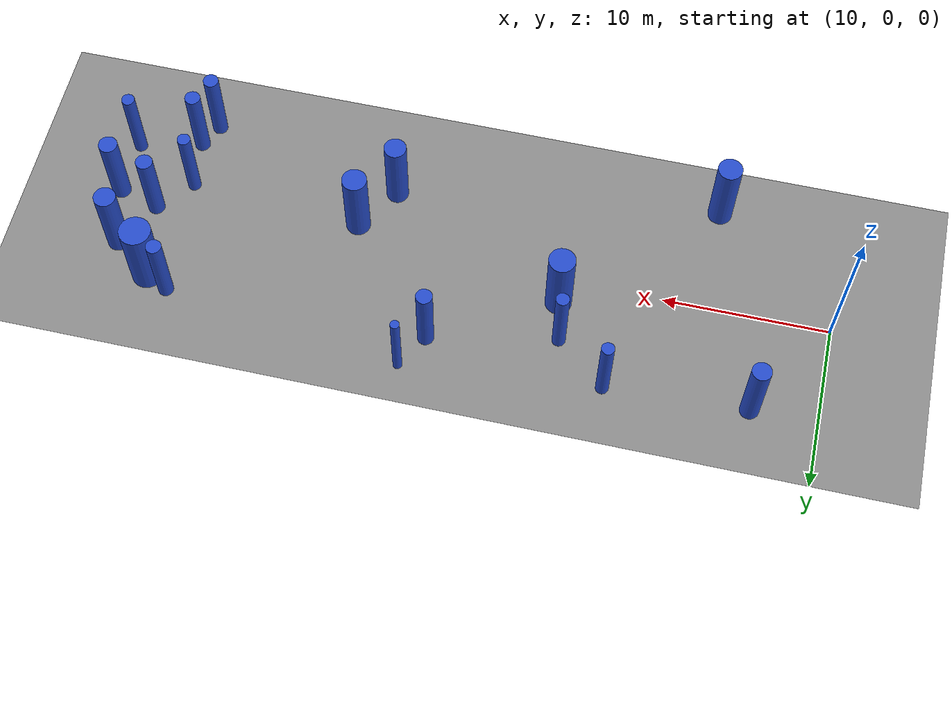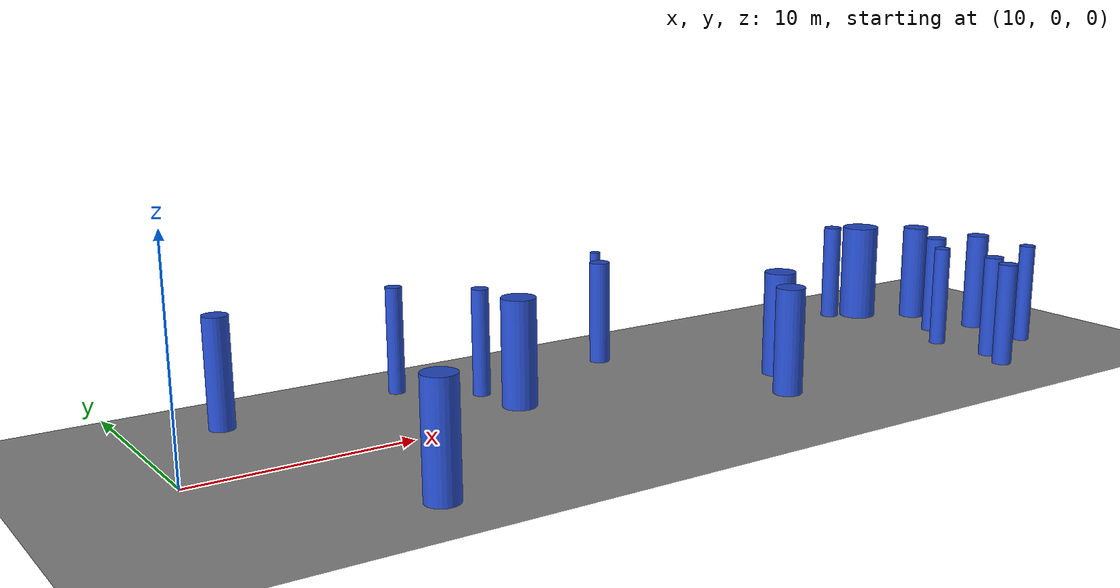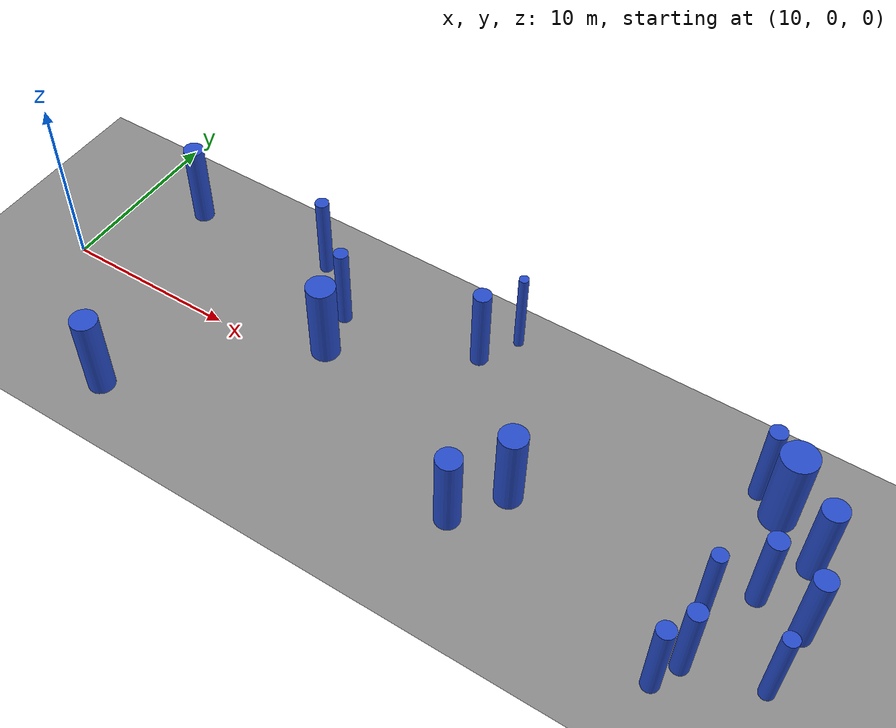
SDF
<sdf version="1.7">
 <world name="forest_randomization_v1">
  <gravity>0 0 -9.8</gravity>
  <light name="sun" type="directional">
   <pose>30 0 20 0 -0 0</pose>
   <diffuse>0.8 0.8 0.8 1</diffuse>
   <specular>0.2 0.2 0.2 1</specular>
   <direction>-0.5 0.5 -1</direction>
   <attenuation><range>10</range></attenuation>
   <spot><inner_angle>0</inner_angle><outer_angle>0</outer_angle><falloff>0</falloff></spot>
  </light>
  <model name="forest_ground_60x20">
   <static>1</static>
   <pose>30 0 0 0 -0 0</pose>
   <link name="link">
    <collision name="collision">
     <geometry><plane><normal>0 0 1</normal><size>60 20</size></plane></geometry>
    </collision>
    <visual name="visual">
     <cast_shadows>0</cast_shadows>
     <geometry><plane><normal>0 0 1</normal><size>60 20</size></plane></geometry>
     <material><ambient>0.45 0.45 0.45 1</ambient><diffuse>0.55 0.55 0.55 1</diffuse></material>
    </visual>
   </link>
  </model>
  <physics name="default_physics" type="ode">
   <max_step_size>0.001</max_step_size>
   <real_time_update_rate>1000</real_time_update_rate>
   <real_time_factor>1</real_time_factor>
  </physics>
  <scene>
   <ambient>0.4 0.4 0.4 1</ambient>
   <background>0.7 0.7 0.7 1</background>
   <shadows>1</shadows>
   <grid>1</grid>
  </scene>
  <magnetic_field>6e-06 2.3e-05 -4.2e-05</magnetic_field>
  <atmosphere type="adiabatic"/>
  <spherical_coordinates>
   <surface_model>EARTH_WGS84</surface_model>
   <latitude_deg>0</latitude_deg>
   <longitude_deg>0</longitude_deg>
   <elevation>0</elevation>
   <heading_deg>0</heading_deg>
  </spherical_coordinates>
  <model name="sparse_0">
   <static>0</static>
   <link name="link">
    <inertial>
     <mass>2</mass>
     <inertia><ixx>4.43883</ixx><ixy>0</ixy><ixz>0</ixz><iyy>4.43883</iyy><iyz>0</iyz><izz>0.54432</izz></inertia>
    </inertial>
    <collision name="collision">
     <geometry><cylinder><length>5</length><radius>0.737781</radius></cylinder></geometry>
     <surface><contact><collide_without_contact>1</collide_without_contact></contact></surface>
    </collision>
    <visual name="visual">
     <geometry><cylinder><length>5</length><radius>0.737781</radius></cylinder></geometry>
     <material>
      <script><uri>file://media/materials/scripts/gazebo.material</uri><name>Gazebo/Blue</name></script>
     </material>
    </visual>
    <gravity>0</gravity>
   </link>
   <pose>17.5738 -6.78383 2.5 0 -0 0</pose>
  </model>
  <model name="sparse_1">
   <static>0</static>
   <link name="link">
    <inertial>
     <mass>2</mass>
     <inertia><ixx>4.33167</ixx><ixy>0</ixy><ixz>0</ixz><iyy>4.33167</iyy><iyz>0</iyz><izz>0.330015</izz></inertia>
    </inertial>
    <collision name="collision">
     <geometry><cylinder><length>5</length><radius>0.574469</radius></cylinder></geometry>
     <surface><contact><collide_without_contact>1</collide_without_contact></contact></surface>
    </collision>
    <visual name="visual">
     <geometry><cylinder><length>5</length><radius>0.574469</radius></cylinder></geometry>
     <material>
      <script><uri>file://media/materials/scripts/gazebo.material</uri><name>Gazebo/Blue</name></script>
     </material>
    </visual>
    <gravity>0</gravity>
   </link>
   <pose>13.9617 6.05762 2.5 0 -0 0</pose>
  </model>
  <model name="sparse_2">
   <static>0</static>
   <link name="link">
    <inertial>
     <mass>2</mass>
     <inertia><ixx>4.24131</ixx><ixy>0</ixy><ixz>0</ixz><iyy>4.24131</iyy><iyz>0</iyz><izz>0.14929</izz></inertia>
    </inertial>
    <collision name="collision">
     <geometry><cylinder><length>5</length><radius>0.38638</radius></cylinder></geometry>
     <surface><contact><collide_without_contact>1</collide_without_contact></contact></surface>
    </collision>
    <visual name="visual">
     <geometry><cylinder><length>5</length><radius>0.38638</radius></cylinder></geometry>
     <material>
      <script><uri>file://media/materials/scripts/gazebo.material</uri><name>Gazebo/Blue</name></script>
     </material>
    </visual>
    <gravity>0</gravity>
   </link>
   <pose>22.5113 6.53401 2.5 0 -0 0</pose>
  </model>
  <model name="medium_3">
   <static>0</static>
   <link name="link">
    <inertial>
     <mass>2</mass>
     <inertia><ixx>4.24786</ixx><ixy>0</ixy><ixz>0</ixz><iyy>4.24786</iyy><iyz>0</iyz><izz>0.162392</izz></inertia>
    </inertial>
    <collision name="collision">
     <geometry><cylinder><length>5</length><radius>0.402979</radius></cylinder></geometry>
     <surface><contact><collide_without_contact>1</collide_without_contact></contact></surface>
    </collision>
    <visual name="visual">
     <geometry><cylinder><length>5</length><radius>0.402979</radius></cylinder></geometry>
     <material>
      <script><uri>file://media/materials/scripts/gazebo.material</uri><name>Gazebo/Blue</name></script>
     </material>
    </visual>
    <gravity>0</gravity>
   </link>
   <pose>25.5663 4.00218 2.5 0 -0 0</pose>
  </model>
  <model name="medium_4">
   <static>0</static>
   <link name="link">
    <inertial>
     <mass>2</mass>
     <inertia><ixx>4.4476</ixx><ixy>0</ixy><ixz>0</ixz><iyy>4.4476</iyy><iyz>0</iyz><izz>0.561865</izz></inertia>
    </inertial>
    <collision name="collision">
     <geometry><cylinder><length>5</length><radius>0.749576</radius></cylinder></geometry>
     <surface><contact><collide_without_contact>1</collide_without_contact></contact></surface>
    </collision>
    <visual name="visual">
     <geometry><cylinder><length>5</length><radius>0.749576</radius></cylinder></geometry>
     <material>
      <script><uri>file://media/materials/scripts/gazebo.material</uri><name>Gazebo/Blue</name></script>
     </material>
    </visual>
    <gravity>0</gravity>
   </link>
   <pose>39.087 -1.16974 2.5 0 -0 0</pose>
  </model>
  <model name="medium_5">
   <static>0</static>
   <link name="link">
    <inertial>
     <mass>2</mass>
     <inertia><ixx>4.39573</ixx><ixy>0</ixy><ixz>0</ixz><iyy>4.39573</iyy><iyz>0</iyz><izz>0.458134</izz></inertia>
    </inertial>
    <collision name="collision">
     <geometry><cylinder><length>5</length><radius>0.676856</radius></cylinder></geometry>
     <surface><contact><collide_without_contact>1</collide_without_contact></contact></surface>
    </collision>
    <visual name="visual">
     <geometry><cylinder><length>5</length><radius>0.676856</radius></cylinder></geometry>
     <material>
      <script><uri>file://media/materials/scripts/gazebo.material</uri><name>Gazebo/Blue</name></script>
     </material>
    </visual>
    <gravity>0</gravity>
   </link>
   <pose>37.2712 -3.88851 2.5 0 -0 0</pose>
  </model>
  <model name="medium_6">
   <static>0</static>
   <link name="link">
    <inertial>
     <mass>2</mass>
     <inertia>
      <ixx>4.20345</ixx>
      <ixy>0</ixy>
      <ixz>0</ixz>
      <iyy>4.20345</iyy>
      <iyz>0</iyz>
      <izz>0.0735654</izz>
     </inertia>
    </inertial>
    <collision name="collision">
     <geometry><cylinder><length>5</length><radius>0.271229</radius></cylinder></geometry>
     <surface><contact><collide_without_contact>1</collide_without_contact></contact></surface>
    </collision>
    <visual name="visual">
     <geometry><cylinder><length>5</length><radius>0.271229</radius></cylinder></geometry>
     <material>
      <script><uri>file://media/materials/scripts/gazebo.material</uri><name>Gazebo/Blue</name></script>
     </material>
    </visual>
    <gravity>0</gravity>
   </link>
   <pose>34.4622 7.6642 2.5 0 -0 0</pose>
  </model>
  <model name="medium_7">
   <static>0</static>
   <link name="link">
    <inertial>
     <mass>2</mass>
     <inertia><ixx>4.28795</ixx><ixy>0</ixy><ixz>0</ixz><iyy>4.28795</iyy><iyz>0</iyz><izz>0.242565</izz></inertia>
    </inertial>
    <collision name="collision">
     <geometry><cylinder><length>5</length><radius>0.492509</radius></cylinder></geometry>
     <surface><contact><collide_without_contact>1</collide_without_contact></contact></surface>
    </collision>
    <visual name="visual">
     <geometry><cylinder><length>5</length><radius>0.492509</radius></cylinder></geometry>
     <material>
      <script><uri>file://media/materials/scripts/gazebo.material</uri><name>Gazebo/Blue</name></script>
     </material>
    </visual>
    <gravity>0</gravity>
   </link>
   <pose>33.2668 5.557 2.5 0 -0 0</pose>
  </model>
  <model name="medium_8">
   <static>0</static>
   <link name="link">
    <inertial>
     <mass>2</mass>
     <inertia><ixx>4.48837</ixx><ixy>0</ixy><ixz>0</ixz><iyy>4.48837</iyy><iyz>0</iyz><izz>0.643414</izz></inertia>
    </inertial>
    <collision name="collision">
     <geometry><cylinder><length>5</length><radius>0.802131</radius></cylinder></geometry>
     <surface><contact><collide_without_contact>1</collide_without_contact></contact></surface>
    </collision>
    <visual name="visual">
     <geometry><cylinder><length>5</length><radius>0.802131</radius></cylinder></geometry>
     <material>
      <script><uri>file://media/materials/scripts/gazebo.material</uri><name>Gazebo/Blue</name></script>
     </material>
    </visual>
    <gravity>0</gravity>
   </link>
   <pose>26.0809 1.50916 2.5 0 -0 0</pose>
  </model>
  <model name="dense_9">
   <static>0</static>
   <link name="link">
    <inertial>
     <mass>2</mass>
     <inertia><ixx>4.27546</ixx><ixy>0</ixy><ixz>0</ixz><iyy>4.27546</iyy><iyz>0</iyz><izz>0.217584</izz></inertia>
    </inertial>
    <collision name="collision">
     <geometry><cylinder><length>5</length><radius>0.466459</radius></cylinder></geometry>
     <surface><contact><collide_without_contact>1</collide_without_contact></contact></surface>
    </collision>
    <visual name="visual">
     <geometry><cylinder><length>5</length><radius>0.466459</radius></cylinder></geometry>
     <material>
      <script><uri>file://media/materials/scripts/gazebo.material</uri><name>Gazebo/Blue</name></script>
     </material>
    </visual>
    <gravity>0</gravity>
   </link>
   <pose>49.4068 -6.21435 2.5 0 -0 0</pose>
  </model>
  <model name="dense_10">
   <static>0</static>
   <link name="link">
    <inertial>
     <mass>2</mass>
     <inertia><ixx>4.27867</ixx><ixy>0</ixy><ixz>0</ixz><iyy>4.27867</iyy><iyz>0</iyz><izz>0.224006</izz></inertia>
    </inertial>
    <collision name="collision">
     <geometry><cylinder><length>5</length><radius>0.473293</radius></cylinder></geometry>
     <surface><contact><collide_without_contact>1</collide_without_contact></contact></surface>
    </collision>
    <visual name="visual">
     <geometry><cylinder><length>5</length><radius>0.473293</radius></cylinder></geometry>
     <material>
      <script><uri>file://media/materials/scripts/gazebo.material</uri><name>Gazebo/Blue</name></script>
     </material>
    </visual>
    <gravity>0</gravity>
   </link>
   <pose>50.1276 -4.74317 2.5 0 -0 0</pose>
  </model>
  <model name="dense_11">
   <static>0</static>
   <link name="link">
    <inertial>
     <mass>2</mass>
     <inertia><ixx>4.27432</ixx><ixy>0</ixy><ixz>0</ixz><iyy>4.27432</iyy><iyz>0</iyz><izz>0.215314</izz></inertia>
    </inertial>
    <collision name="collision">
     <geometry><cylinder><length>5</length><radius>0.464019</radius></cylinder></geometry>
     <surface><contact><collide_without_contact>1</collide_without_contact></contact></surface>
    </collision>
    <visual name="visual">
     <geometry><cylinder><length>5</length><radius>0.464019</radius></cylinder></geometry>
     <material>
      <script><uri>file://media/materials/scripts/gazebo.material</uri><name>Gazebo/Blue</name></script>
     </material>
    </visual>
    <gravity>0</gravity>
   </link>
   <pose>49.2188 5.78602 2.5 0 -0 0</pose>
  </model>
  <model name="dense_12">
   <static>0</static>
   <link name="link">
    <inertial>
     <mass>2</mass>
     <inertia><ixx>4.24626</ixx><ixy>0</ixy><ixz>0</ixz><iyy>4.24626</iyy><iyz>0</iyz><izz>0.159182</izz></inertia>
    </inertial>
    <collision name="collision">
     <geometry><cylinder><length>5</length><radius>0.398976</radius></cylinder></geometry>
     <surface><contact><collide_without_contact>1</collide_without_contact></contact></surface>
    </collision>
    <visual name="visual">
     <geometry><cylinder><length>5</length><radius>0.398976</radius></cylinder></geometry>
     <material>
      <script><uri>file://media/materials/scripts/gazebo.material</uri><name>Gazebo/Blue</name></script>
     </material>
    </visual>
    <gravity>0</gravity>
   </link>
   <pose>49.7324 -1.72187 2.5 0 -0 0</pose>
  </model>
  <model name="dense_13">
   <static>0</static>
   <link name="link">
    <inertial>
     <mass>2</mass>
     <inertia><ixx>4.38864</ixx><ixy>0</ixy><ixz>0</ixz><iyy>4.38864</iyy><iyz>0</iyz><izz>0.443942</izz></inertia>
    </inertial>
    <collision name="collision">
     <geometry><cylinder><length>5</length><radius>0.66629</radius></cylinder></geometry>
     <surface><contact><collide_without_contact>1</collide_without_contact></contact></surface>
    </collision>
    <visual name="visual">
     <geometry><cylinder><length>5</length><radius>0.66629</radius></cylinder></geometry>
     <material>
      <script><uri>file://media/materials/scripts/gazebo.material</uri><name>Gazebo/Blue</name></script>
     </material>
    </visual>
    <gravity>0</gravity>
   </link>
   <pose>53.0453 3.19449 2.5 0 -0 0</pose>
  </model>
  <model name="dense_14">
   <static>0</static>
   <link name="link">
    <inertial>
     <mass>2</mass>
     <inertia><ixx>4.29892</ixx><ixy>0</ixy><ixz>0</ixz><iyy>4.29892</iyy><iyz>0</iyz><izz>0.264499</izz></inertia>
    </inertial>
    <collision name="collision">
     <geometry><cylinder><length>5</length><radius>0.514294</radius></cylinder></geometry>
     <surface><contact><collide_without_contact>1</collide_without_contact></contact></surface>
    </collision>
    <visual name="visual">
     <geometry><cylinder><length>5</length><radius>0.514294</radius></cylinder></geometry>
     <material>
      <script><uri>file://media/materials/scripts/gazebo.material</uri><name>Gazebo/Blue</name></script>
     </material>
    </visual>
    <gravity>0</gravity>
   </link>
   <pose>51.5512 0.335826 2.5 0 -0 0</pose>
  </model>
  <model name="dense_15">
   <static>0</static>
   <link name="link">
    <inertial>
     <mass>2</mass>
     <inertia><ixx>4.62178</ixx><ixy>0</ixy><ixz>0</ixz><iyy>4.62178</iyy><iyz>0</iyz><izz>0.910232</izz></inertia>
    </inertial>
    <collision name="collision">
     <geometry><cylinder><length>5</length><radius>0.954061</radius></cylinder></geometry>
     <surface><contact><collide_without_contact>1</collide_without_contact></contact></surface>
    </collision>
    <visual name="visual">
     <geometry><cylinder><length>5</length><radius>0.954061</radius></cylinder></geometry>
     <material>
      <script><uri>file://media/materials/scripts/gazebo.material</uri><name>Gazebo/Blue</name></script>
     </material>
    </visual>
    <gravity>0</gravity>
   </link>
   <pose>50.6048 5.02477 2.5 0 -0 0</pose>
  </model>
  <model name="dense_16">
   <static>0</static>
   <link name="link">
    <inertial>
     <mass>2</mass>
     <inertia><ixx>4.2459</ixx><ixy>0</ixy><ixz>0</ixz><iyy>4.2459</iyy><iyz>0</iyz><izz>0.158457</izz></inertia>
    </inertial>
    <collision name="collision">
     <geometry><cylinder><length>5</length><radius>0.398066</radius></cylinder></geometry>
     <surface><contact><collide_without_contact>1</collide_without_contact></contact></surface>
    </collision>
    <visual name="visual">
     <geometry><cylinder><length>5</length><radius>0.398066</radius></cylinder></geometry>
     <material>
      <script><uri>file://media/materials/scripts/gazebo.material</uri><name>Gazebo/Blue</name></script>
     </material>
    </visual>
    <gravity>0</gravity>
   </link>
   <pose>53.884 -3.76451 2.5 0 -0 0</pose>
  </model>
  <model name="dense_17">
   <static>0</static>
   <link name="link">
    <inertial>
     <mass>2</mass>
     <inertia><ixx>4.32822</ixx><ixy>0</ixy><ixz>0</ixz><iyy>4.32822</iyy><iyz>0</iyz><izz>0.323098</izz></inertia>
    </inertial>
    <collision name="collision">
     <geometry><cylinder><length>5</length><radius>0.568417</radius></cylinder></geometry>
     <surface><contact><collide_without_contact>1</collide_without_contact></contact></surface>
    </collision>
    <visual name="visual">
     <geometry><cylinder><length>5</length><radius>0.568417</radius></cylinder></geometry>
     <material>
      <script><uri>file://media/materials/scripts/gazebo.material</uri><name>Gazebo/Blue</name></script>
     </material>
    </visual>
    <gravity>0</gravity>
   </link>
   <pose>54.028 -0.374394 2.5 0 -0 0</pose>
  </model>
 </world>
</sdf>
